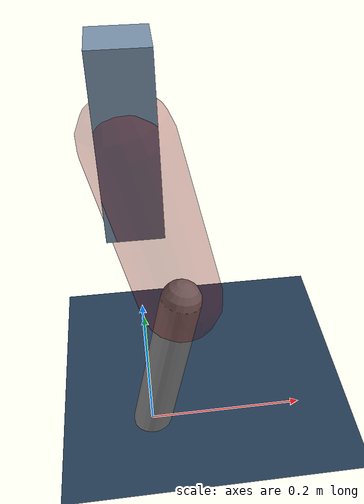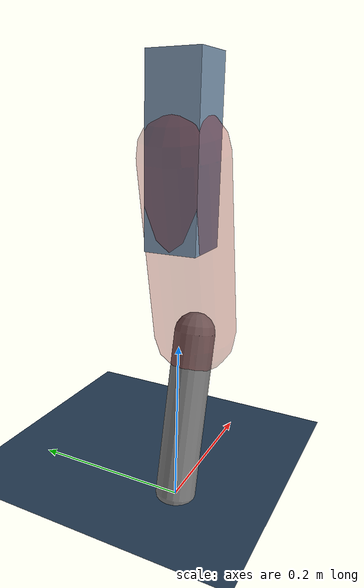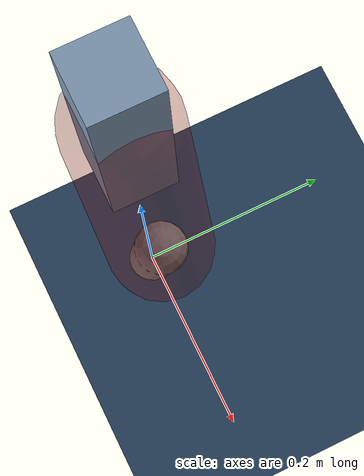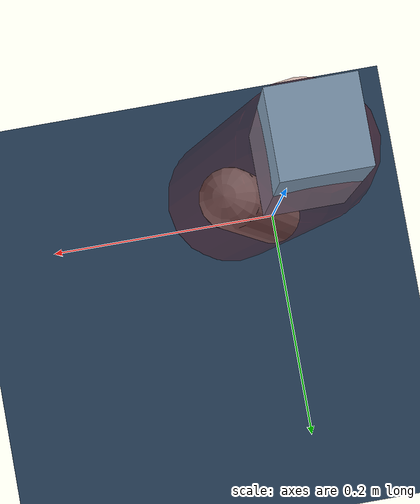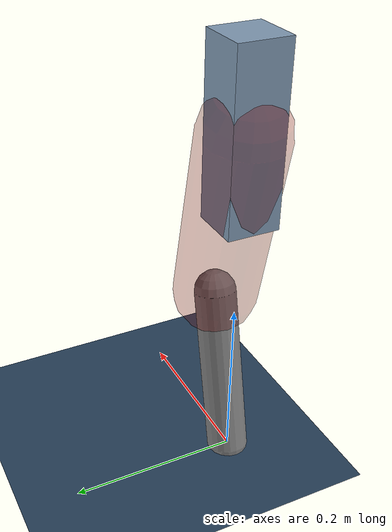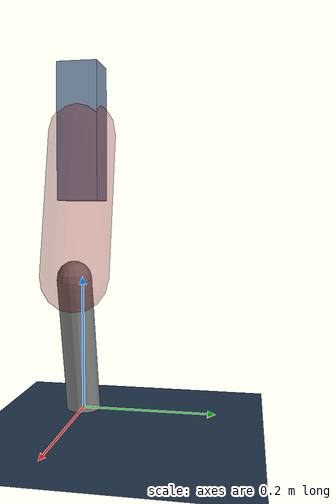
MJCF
<mujoco model="Hopper2D">
	<compiler inertiafromgeom="true" angle="radian" />
	<option timestep="0.001" integrator="implicit" cone="elliptic" solver="Newton" tolerance="1e-10" />

	<default>
		<geom contype="1" conaffinity="1" condim="3" friction="2 0.005 0.0001" solref="0.005 1" />
		<joint limited="true" damping="0.1" />
	</default>

	<asset>
		<texture name="skybox" type="skybox" builtin="gradient" rgb1=".4 .6 .8" rgb2="0 0 0" width="800" height="800" />
		<texture name="grid" type="2d" builtin="checker" rgb1=".1 .2 .3" rgb2=".2 .3 .4" width="300" height="300" mark="edge" markrgb=".2 .3 .4" />
		<material name="ground" texture="grid" texrepeat="1 1" texuniform="true" reflectance="0.1" />
		<material name="leg" rgba="0.5 0.6 0.7 1" />
	</asset>

	<worldbody>

		<geom name="floor" type="plane" size="5 5 0.25" material="ground" />

		<light directional="false" diffuse="0.8 0.8 0.8" specular="0.3 0.3 0.3" pos="0 0 2" dir="0 0 -1" />
		<light mode="targetbodycom" target="base" directional="false" diffuse="0.8 0.8 0.8" specular="0.3 0.3 0.3" pos="0 0 2" dir="0 0 -1" />

		<camera name="fixed" pos="0 -2 1" xyaxes="1 0 0 0 0 1" />
		<camera name="tracking" mode="trackcom" pos="0 -3 1" />

		<body name="root" pos="0 0 0.4156841216698735">
			<joint name="slide_x" type="slide" axis="1 0 0" range="-100 100" />
			<joint name="slide_z" type="slide" axis="0 0 1" range="0 10" />

			<body name="base" pos="0 0 0">
				<geom name="torso" type="box" size="0.03 0.03 0.1" mass="2.206" material="leg" />

				<body name="link1" pos="0 0 0" euler="0 1.3578988810021417 0">
					<joint type="hinge" axis="0 -1 0" pos="0 0 0" name="hinge1" limited="true" range="-3.14 3.14" stiffness="0" damping="0.1" />
					<geom name="thigh" type="capsule" fromto="0 0 0 0.21701550642893666 0 0" size="0.05" rgba="0.5 0 0 0.3" mass="0.7721387660723417" />

					<body name="link2" pos="0.21701550642893666 0 0" euler="0 0.43445018469275415 0">
						<joint type="hinge" axis="0 -1 0" pos="0 0 0" name="hinge2" limited="true" range="-3.14 3.14" stiffness="0" damping="0.1" />
						<geom name="shank" type="capsule" fromto="0 0 0 0.20866861524093686 0 0" size="0.025" mass="0.40820175371684314" />

					</body>
				</body>
			</body>
		</body>
	</worldbody>

	<actuator>
		<motor name="torque1" joint="hinge1" ctrlrange="-50.05101508583216 50.05101508583216" ctrllimited="true" gear="1" />
		<motor name="torque2" joint="hinge2" ctrlrange="-84.91891397923213 84.91891397923213" ctrllimited="true" gear="1" />
	</actuator>
</mujoco>
